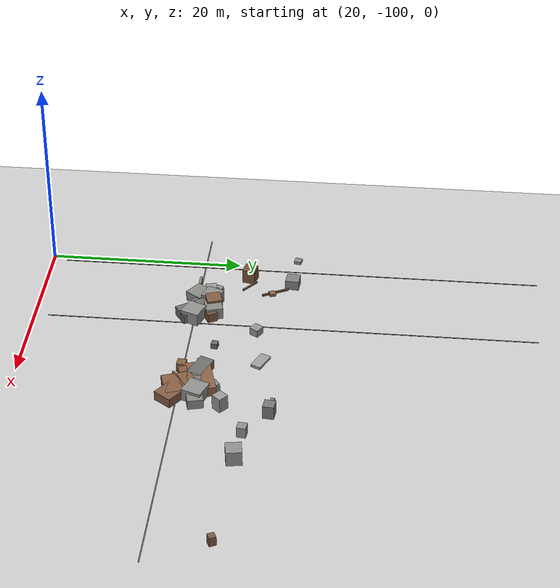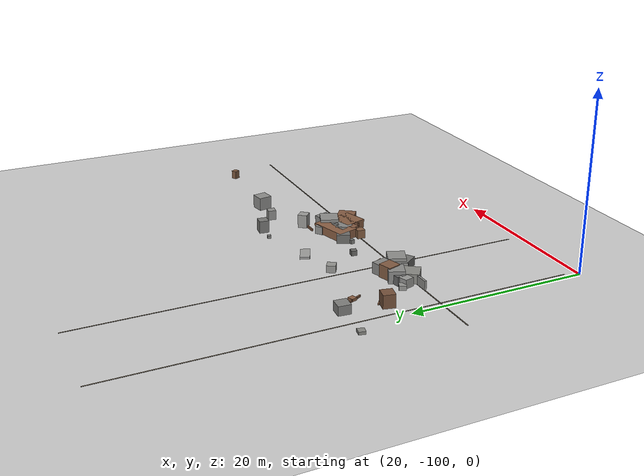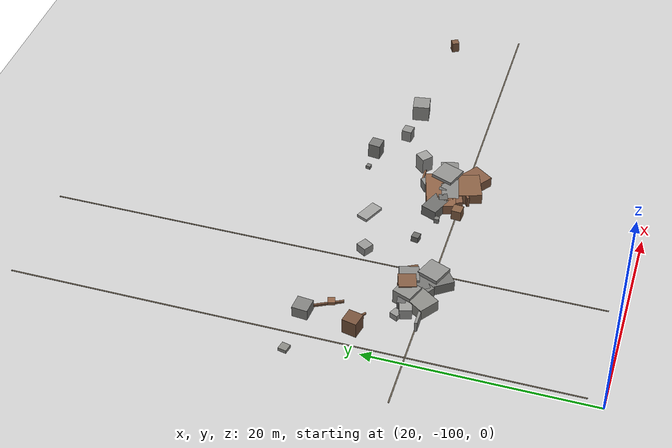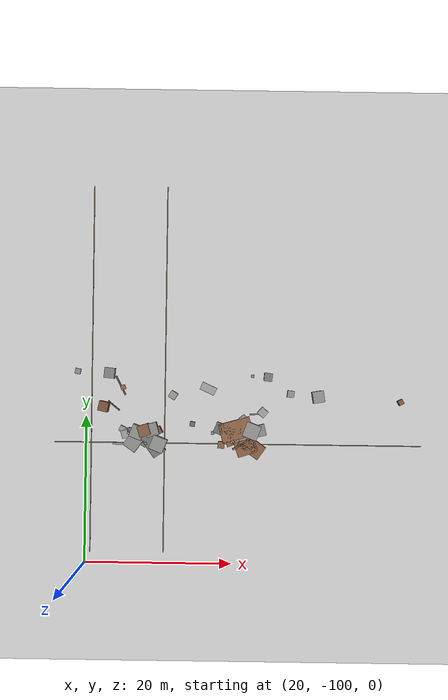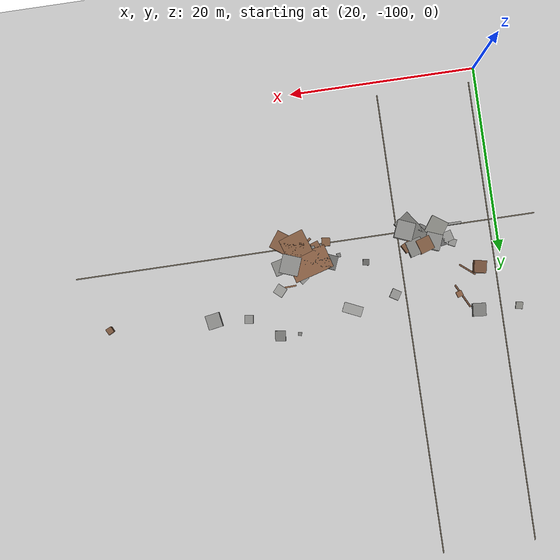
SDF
<sdf version="1.6">
 <world name="navitas_arena">
  <model name="ground_plane">
   <static>true</static>
   <link name="link">
    <collision name="collision">
     <geometry><plane><normal>0 0 1</normal><size>400 400</size></plane></geometry>
     <surface><friction><ode><mu>0.8</mu><mu2>0.8</mu2></ode></friction></surface>
    </collision>
    <visual name="visual">
     <cast_shadows>false</cast_shadows>
     <geometry><plane><normal>0 0 1</normal><size>400 400</size></plane></geometry>
     <material>
      <script><uri>file://media/materials/scripts/gazebo.material</uri><name>Gazebo/Grey</name></script>
     </material>
    </visual>
   </link>
  </model>
  <model name="gv_orta_-2">
   <static>true</static>
   <pose>20.700 -73.600 0.010 0 0 0.000</pose>
   <link name="link">
    <collision name="col"><geometry><box><size>0.120 50.000 0.020</size></box></geometry></collision>
    <visual name="vis">
     <geometry><box><size>0.120 50.000 0.020</size></box></geometry>
     <material><ambient>0.42 0.38 0.32 1</ambient><diffuse>0.42 0.38 0.32 1</diffuse></material>
    </visual>
   </link>
  </model>
  <model name="gv_orta_-1">
   <static>true</static>
   <pose>30.700 -73.600 0.010 0 0 0.000</pose>
   <link name="link">
    <collision name="col"><geometry><box><size>0.120 50.000 0.020</size></box></geometry></collision>
    <visual name="vis">
     <geometry><box><size>0.120 50.000 0.020</size></box></geometry>
     <material><ambient>0.42 0.38 0.32 1</ambient><diffuse>0.42 0.38 0.32 1</diffuse></material>
    </visual>
   </link>
  </model>
  <model name="gh_orta_-1">
   <static>true</static>
   <pose>40.700 -83.600 0.010 0 0 0.000</pose>
   <link name="link">
    <collision name="col"><geometry><box><size>50.000 0.120 0.020</size></box></geometry></collision>
    <visual name="vis">
     <geometry><box><size>50.000 0.120 0.020</size></box></geometry>
     <material><ambient>0.42 0.38 0.32 1</ambient><diffuse>0.42 0.38 0.32 1</diffuse></material>
    </visual>
   </link>
  </model>
  <model name="blk_orta_0_1_0">
   <static>true</static>
   <pose>25.696 -83.677 0.500 0 0 0.003</pose>
   <link name="link">
    <collision name="col"><geometry><box><size>3.831 0.238 1.000</size></box></geometry></collision>
    <visual name="vis">
     <geometry><box><size>3.831 0.238 1.000</size></box></geometry>
     <material><ambient>0.57 0.57 0.56 1</ambient><diffuse>0.57 0.57 0.56 1</diffuse></material>
    </visual>
   </link>
  </model>
  <model name="blk_orta_0_1_1">
   <static>true</static>
   <pose>26.474 -83.521 0.543 0 0 0.958</pose>
   <link name="link">
    <collision name="col"><geometry><box><size>1.940 1.940 1.086</size></box></geometry></collision>
    <visual name="vis">
     <geometry><box><size>1.940 1.940 1.086</size></box></geometry>
     <material><ambient>0.54 0.54 0.52 1</ambient><diffuse>0.54 0.54 0.52 1</diffuse></material>
    </visual>
   </link>
  </model>
  <model name="blk_orta_0_1_3">
   <static>true</static>
   <pose>28.053 -83.665 0.500 0 0 2.566</pose>
   <link name="link">
    <collision name="col"><geometry><box><size>0.732 0.732 1.000</size></box></geometry></collision>
    <visual name="vis">
     <geometry><box><size>0.732 0.732 1.000</size></box></geometry>
     <material><ambient>0.48 0.48 0.47 1</ambient><diffuse>0.48 0.48 0.47 1</diffuse></material>
    </visual>
   </link>
  </model>
  <model name="blk_orta_0_1_4">
   <static>true</static>
   <pose>28.989 -83.418 0.500 0 0 2.185</pose>
   <link name="link">
    <collision name="col"><geometry><box><size>4.056 1.913 1.000</size></box></geometry></collision>
    <visual name="vis">
     <geometry><box><size>4.056 1.913 1.000</size></box></geometry>
     <material><ambient>0.45 0.45 0.44 1</ambient><diffuse>0.45 0.45 0.44 1</diffuse></material>
    </visual>
   </link>
  </model>
  <model name="blk_orta_0_1_5">
   <static>true</static>
   <pose>29.901 -83.673 0.677 0 0 1.183</pose>
   <link name="link">
    <collision name="col"><geometry><box><size>1.955 1.955 1.353</size></box></geometry></collision>
    <visual name="vis">
     <geometry><box><size>1.955 1.955 1.353</size></box></geometry>
     <material><ambient>0.56 0.56 0.55 1</ambient><diffuse>0.56 0.56 0.55 1</diffuse></material>
    </visual>
   </link>
  </model>
  <model name="blk_orta_0_2_0">
   <static>true</static>
   <pose>25.452 -82.374 0.500 0 0 1.834</pose>
   <link name="link">
    <collision name="col"><geometry><box><size>1.091 1.091 1.000</size></box></geometry></collision>
    <visual name="vis">
     <geometry><box><size>1.091 1.091 1.000</size></box></geometry>
     <material><ambient>0.60 0.60 0.59 1</ambient><diffuse>0.60 0.60 0.59 1</diffuse></material>
    </visual>
   </link>
  </model>
  <model name="blk_orta_0_2_1">
   <static>true</static>
   <pose>26.246 -82.011 0.500 0 0 0.168</pose>
   <link name="link">
    <collision name="col"><geometry><box><size>1.094 1.094 1.000</size></box></geometry></collision>
    <visual name="vis">
     <geometry><box><size>1.094 1.094 1.000</size></box></geometry>
     <material><ambient>0.41 0.41 0.41 1</ambient><diffuse>0.41 0.41 0.41 1</diffuse></material>
    </visual>
   </link>
  </model>
  <model name="blk_orta_0_2_2">
   <static>true</static>
   <pose>27.059 -82.086 0.684 0 0 2.766</pose>
   <link name="link">
    <collision name="col"><geometry><box><size>1.740 1.740 1.368</size></box></geometry></collision>
    <visual name="vis">
     <geometry><box><size>1.740 1.740 1.368</size></box></geometry>
     <material><ambient>0.55 0.55 0.54 1</ambient><diffuse>0.55 0.55 0.54 1</diffuse></material>
    </visual>
   </link>
  </model>
  <model name="blk_orta_0_2_3">
   <static>true</static>
   <pose>27.976 -81.842 0.736 0 0 1.880</pose>
   <link name="link">
    <collision name="col"><geometry><box><size>1.544 1.544 1.473</size></box></geometry></collision>
    <visual name="vis">
     <geometry><box><size>1.544 1.544 1.473</size></box></geometry>
     <material><ambient>0.51 0.36 0.26 1</ambient><diffuse>0.51 0.36 0.26 1</diffuse></material>
    </visual>
   </link>
  </model>
  <model name="blk_orta_0_2_4">
   <static>true</static>
   <pose>29.010 -81.738 0.622 0 0 1.847</pose>
   <link name="link">
    <collision name="col"><geometry><box><size>1.722 1.722 1.243</size></box></geometry></collision>
    <visual name="vis">
     <geometry><box><size>1.722 1.722 1.243</size></box></geometry>
     <material><ambient>0.53 0.53 0.52 1</ambient><diffuse>0.53 0.53 0.52 1</diffuse></material>
    </visual>
   </link>
  </model>
  <model name="blk_orta_0_2_5">
   <static>true</static>
   <pose>29.838 -81.901 0.500 0 0 2.068</pose>
   <link name="link">
    <collision name="col"><geometry><box><size>1.027 1.027 1.000</size></box></geometry></collision>
    <visual name="vis">
     <geometry><box><size>1.027 1.027 1.000</size></box></geometry>
     <material><ambient>0.48 0.34 0.24 1</ambient><diffuse>0.48 0.34 0.24 1</diffuse></material>
    </visual>
   </link>
  </model>
  <model name="blk_orta_1_1_0">
   <static>true</static>
   <pose>38.447 -83.694 0.500 0 0 1.487</pose>
   <link name="link">
    <collision name="col"><geometry><box><size>0.896 0.896 1.000</size></box></geometry></collision>
    <visual name="vis">
     <geometry><box><size>0.896 0.896 1.000</size></box></geometry>
     <material><ambient>0.52 0.37 0.26 1</ambient><diffuse>0.52 0.37 0.26 1</diffuse></material>
    </visual>
   </link>
  </model>
  <model name="blk_orta_1_1_1">
   <static>true</static>
   <pose>39.610 -83.401 0.500 0 0 1.912</pose>
   <link name="link">
    <collision name="col"><geometry><box><size>0.895 0.895 1.000</size></box></geometry></collision>
    <visual name="vis">
     <geometry><box><size>0.895 0.895 1.000</size></box></geometry>
     <material><ambient>0.52 0.36 0.26 1</ambient><diffuse>0.52 0.36 0.26 1</diffuse></material>
    </visual>
   </link>
  </model>
  <model name="blk_orta_1_1_3">
   <static>true</static>
   <pose>41.248 -83.562 0.500 0 0 0.551</pose>
   <link name="link">
    <collision name="col"><geometry><box><size>2.809 0.232 1.000</size></box></geometry></collision>
    <visual name="vis">
     <geometry><box><size>2.809 0.232 1.000</size></box></geometry>
     <material><ambient>0.52 0.36 0.26 1</ambient><diffuse>0.52 0.36 0.26 1</diffuse></material>
    </visual>
   </link>
  </model>
  <model name="blk_orta_1_1_4">
   <static>true</static>
   <pose>41.734 -83.736 0.500 0 0 1.896</pose>
   <link name="link">
    <collision name="col"><geometry><box><size>2.564 2.799 1.000</size></box></geometry></collision>
    <visual name="vis">
     <geometry><box><size>2.564 2.799 1.000</size></box></geometry>
     <material><ambient>0.53 0.37 0.26 1</ambient><diffuse>0.53 0.37 0.26 1</diffuse></material>
    </visual>
   </link>
  </model>
  <model name="blk_orta_1_1_5">
   <static>true</static>
   <pose>42.551 -83.852 0.500 0 0 2.526</pose>
   <link name="link">
    <collision name="col"><geometry><box><size>3.453 2.018 1.000</size></box></geometry></collision>
    <visual name="vis">
     <geometry><box><size>3.453 2.018 1.000</size></box></geometry>
     <material><ambient>0.52 0.36 0.26 1</ambient><diffuse>0.52 0.36 0.26 1</diffuse></material>
    </visual>
   </link>
  </model>
  <model name="blk_orta_1_2_0">
   <static>true</static>
   <pose>38.901 -81.759 0.500 0 0 2.748</pose>
   <link name="link">
    <collision name="col"><geometry><box><size>2.770 1.504 1.000</size></box></geometry></collision>
    <visual name="vis">
     <geometry><box><size>2.770 1.504 1.000</size></box></geometry>
     <material><ambient>0.43 0.43 0.42 1</ambient><diffuse>0.43 0.43 0.42 1</diffuse></material>
    </visual>
   </link>
  </model>
  <model name="blk_orta_1_2_1">
   <static>true</static>
   <pose>39.601 -82.093 0.500 0 0 0.353</pose>
   <link name="link">
    <collision name="col"><geometry><box><size>0.780 0.780 1.000</size></box></geometry></collision>
    <visual name="vis">
     <geometry><box><size>0.780 0.780 1.000</size></box></geometry>
     <material><ambient>0.42 0.42 0.41 1</ambient><diffuse>0.42 0.42 0.41 1</diffuse></material>
    </visual>
   </link>
  </model>
  <model name="blk_orta_1_2_2">
   <static>true</static>
   <pose>40.460 -81.634 0.500 0 0 0.276</pose>
   <link name="link">
    <collision name="col"><geometry><box><size>4.359 2.599 1.000</size></box></geometry></collision>
    <visual name="vis">
     <geometry><box><size>4.359 2.599 1.000</size></box></geometry>
     <material><ambient>0.55 0.38 0.27 1</ambient><diffuse>0.55 0.38 0.27 1</diffuse></material>
    </visual>
   </link>
  </model>
  <model name="blk_orta_1_2_3">
   <static>true</static>
   <pose>40.846 -81.807 0.500 0 0 0.076</pose>
   <link name="link">
    <collision name="col"><geometry><box><size>0.710 0.710 1.000</size></box></geometry></collision>
    <visual name="vis">
     <geometry><box><size>0.710 0.710 1.000</size></box></geometry>
     <material><ambient>0.47 0.47 0.46 1</ambient><diffuse>0.47 0.47 0.46 1</diffuse></material>
    </visual>
   </link>
  </model>
  <model name="blk_orta_1_2_4">
   <static>true</static>
   <pose>42.008 -82.127 0.500 0 0 0.245</pose>
   <link name="link">
    <collision name="col"><geometry><box><size>4.970 1.563 1.000</size></box></geometry></collision>
    <visual name="vis">
     <geometry><box><size>4.970 1.563 1.000</size></box></geometry>
     <material><ambient>0.53 0.53 0.52 1</ambient><diffuse>0.53 0.53 0.52 1</diffuse></material>
    </visual>
   </link>
  </model>
  <model name="blk_orta_1_2_5">
   <static>true</static>
   <pose>42.593 -81.760 0.653 0 0 1.206</pose>
   <link name="link">
    <collision name="col"><geometry><box><size>2.054 2.054 1.306</size></box></geometry></collision>
    <visual name="vis">
     <geometry><box><size>2.054 2.054 1.306</size></box></geometry>
     <material><ambient>0.56 0.56 0.55 1</ambient><diffuse>0.56 0.56 0.55 1</diffuse></material>
    </visual>
   </link>
  </model>
  <model name="chic_orta_4">
   <static>true</static>
   <pose>62.783 -77.600 0.500 0 0 0.463</pose>
   <link name="link">
    <collision name="col"><geometry><box><size>0.674 0.674 1.000</size></box></geometry></collision>
    <visual name="vis">
     <geometry><box><size>0.674 0.674 1.000</size></box></geometry>
     <material><ambient>0.49 0.35 0.25 1</ambient><diffuse>0.49 0.35 0.25 1</diffuse></material>
    </visual>
   </link>
  </model>
  <model name="deb_orta_3">
   <static>true</static>
   <pose>43.272 -79.486 0.122 0 0 0.039</pose>
   <link name="link">
    <collision name="col"><geometry><box><size>2.018 0.156 0.245</size></box></geometry></collision>
    <visual name="vis">
     <geometry><box><size>2.018 0.156 0.245</size></box></geometry>
     <material><ambient>0.55 0.38 0.27 1</ambient><diffuse>0.55 0.38 0.27 1</diffuse></material>
    </visual>
   </link>
  </model>
  <model name="deb_orta_4">
   <static>true</static>
   <pose>34.491 -80.925 0.287 0 0 1.399</pose>
   <link name="link">
    <collision name="col"><geometry><box><size>0.658 0.658 0.574</size></box></geometry></collision>
    <visual name="vis">
     <geometry><box><size>0.658 0.658 0.574</size></box></geometry>
     <material><ambient>0.40 0.40 0.39 1</ambient><diffuse>0.40 0.40 0.39 1</diffuse></material>
    </visual>
   </link>
  </model>
  <model name="deb_orta_11">
   <static>true</static>
   <pose>41.447 -80.170 0.457 0 0 2.209</pose>
   <link name="link">
    <collision name="col"><geometry><box><size>0.933 0.933 0.914</size></box></geometry></collision>
    <visual name="vis">
     <geometry><box><size>0.933 0.933 0.914</size></box></geometry>
     <material><ambient>0.56 0.56 0.55 1</ambient><diffuse>0.56 0.56 0.55 1</diffuse></material>
    </visual>
   </link>
  </model>
  <model name="deb_orta_13">
   <static>true</static>
   <pose>28.721 -83.430 0.290 0 0 2.239</pose>
   <link name="link">
    <collision name="col"><geometry><box><size>0.716 0.716 0.580</size></box></geometry></collision>
    <visual name="vis">
     <geometry><box><size>0.716 0.716 0.580</size></box></geometry>
     <material><ambient>0.61 0.61 0.59 1</ambient><diffuse>0.61 0.61 0.59 1</diffuse></material>
    </visual>
   </link>
  </model>
  <model name="deb_orta_14">
   <static>true</static>
   <pose>22.478 -78.660 0.748 0 0 1.363</pose>
   <link name="link">
    <collision name="col"><geometry><box><size>1.322 1.322 1.495</size></box></geometry></collision>
    <visual name="vis">
     <geometry><box><size>1.322 1.322 1.495</size></box></geometry>
     <material><ambient>0.46 0.32 0.23 1</ambient><diffuse>0.46 0.32 0.23 1</diffuse></material>
    </visual>
   </link>
  </model>
  <model name="deb_orta_28">
   <static>true</static>
   <pose>42.637 -74.302 0.161 0 0 2.949</pose>
   <link name="link">
    <collision name="col"><geometry><box><size>0.409 0.409 0.322</size></box></geometry></collision>
    <visual name="vis">
     <geometry><box><size>0.409 0.409 0.322</size></box></geometry>
     <material><ambient>0.48 0.48 0.47 1</ambient><diffuse>0.48 0.48 0.47 1</diffuse></material>
    </visual>
   </link>
  </model>
  <model name="deb_orta_29">
   <static>true</static>
   <pose>24.956 -81.711 0.277 0 0 1.127</pose>
   <link name="link">
    <collision name="col"><geometry><box><size>0.765 0.765 0.554</size></box></geometry></collision>
    <visual name="vis">
     <geometry><box><size>0.765 0.765 0.554</size></box></geometry>
     <material><ambient>0.58 0.58 0.57 1</ambient><diffuse>0.58 0.58 0.57 1</diffuse></material>
    </visual>
   </link>
  </model>
  <model name="deb_orta_40">
   <static>true</static>
   <pose>31.846 -77.022 0.401 0 0 2.584</pose>
   <link name="link">
    <collision name="col"><geometry><box><size>0.998 0.998 0.802</size></box></geometry></collision>
    <visual name="vis">
     <geometry><box><size>0.998 0.998 0.802</size></box></geometry>
     <material><ambient>0.58 0.58 0.57 1</ambient><diffuse>0.58 0.58 0.57 1</diffuse></material>
    </visual>
   </link>
  </model>
  <model name="deb_orta_41">
   <static>true</static>
   <pose>18.784 -73.936 0.161 0 0 2.935</pose>
   <link name="link">
    <collision name="col"><geometry><box><size>0.755 0.755 0.323</size></box></geometry></collision>
    <visual name="vis">
     <geometry><box><size>0.755 0.755 0.323</size></box></geometry>
     <material><ambient>0.53 0.53 0.51 1</ambient><diffuse>0.53 0.53 0.51 1</diffuse></material>
    </visual>
   </link>
  </model>
  <model name="deb_orta_44">
   <static>true</static>
   <pose>44.726 -74.405 0.719 0 0 3.027</pose>
   <link name="link">
    <collision name="col"><geometry><box><size>1.110 1.110 1.438</size></box></geometry></collision>
    <visual name="vis">
     <geometry><box><size>1.110 1.110 1.438</size></box></geometry>
     <material><ambient>0.47 0.47 0.46 1</ambient><diffuse>0.47 0.47 0.46 1</diffuse></material>
    </visual>
   </link>
  </model>
  <model name="deb_orta_46">
   <static>true</static>
   <pose>36.614 -76.087 0.139 0 0 2.712</pose>
   <link name="link">
    <collision name="col"><geometry><box><size>2.115 1.083 0.277</size></box></geometry></collision>
    <visual name="vis">
     <geometry><box><size>2.115 1.083 0.277</size></box></geometry>
     <material><ambient>0.62 0.62 0.61 1</ambient><diffuse>0.62 0.62 0.61 1</diffuse></material>
    </visual>
   </link>
  </model>
  <model name="deb_orta_51">
   <static>true</static>
   <pose>24.981 -76.078 0.151 0 0 1.901</pose>
   <link name="link">
    <collision name="col"><geometry><box><size>0.644 0.644 0.302</size></box></geometry></collision>
    <visual name="vis">
     <geometry><box><size>0.644 0.644 0.302</size></box></geometry>
     <material><ambient>0.55 0.38 0.27 1</ambient><diffuse>0.55 0.38 0.27 1</diffuse></material>
    </visual>
   </link>
  </model>
  <model name="deb_orta_52">
   <static>true</static>
   <pose>47.823 -76.659 0.570 0 0 1.453</pose>
   <link name="link">
    <collision name="col"><geometry><box><size>0.909 0.909 1.140</size></box></geometry></collision>
    <visual name="vis">
     <geometry><box><size>0.909 0.909 1.140</size></box></geometry>
     <material><ambient>0.56 0.56 0.55 1</ambient><diffuse>0.56 0.56 0.55 1</diffuse></material>
    </visual>
   </link>
  </model>
  <model name="deb_orta_55">
   <static>true</static>
   <pose>23.737 -78.569 0.084 0 0 2.456</pose>
   <link name="link">
    <collision name="col"><geometry><box><size>2.043 0.165 0.167</size></box></geometry></collision>
    <visual name="vis">
     <geometry><box><size>2.043 0.165 0.167</size></box></geometry>
     <material><ambient>0.49 0.34 0.24 1</ambient><diffuse>0.49 0.34 0.24 1</diffuse></material>
    </visual>
   </link>
  </model>
  <model name="deb_orta_62">
   <static>true</static>
   <pose>24.650 -75.804 0.107 0 0 2.048</pose>
   <link name="link">
    <collision name="col"><geometry><box><size>2.900 0.177 0.214</size></box></geometry></collision>
    <visual name="vis">
     <geometry><box><size>2.900 0.177 0.214</size></box></geometry>
     <material><ambient>0.46 0.32 0.23 1</ambient><diffuse>0.46 0.32 0.23 1</diffuse></material>
    </visual>
   </link>
  </model>
  <model name="deb_orta_68">
   <static>true</static>
   <pose>37.287 -82.096 0.233 0 0 0.065</pose>
   <link name="link">
    <collision name="col"><geometry><box><size>0.427 0.427 0.467</size></box></geometry></collision>
    <visual name="vis">
     <geometry><box><size>0.427 0.427 0.467</size></box></geometry>
     <material><ambient>0.48 0.48 0.47 1</ambient><diffuse>0.48 0.48 0.47 1</diffuse></material>
    </visual>
   </link>
  </model>
  <model name="deb_orta_74">
   <static>true</static>
   <pose>23.180 -74.106 0.521 0 0 1.483</pose>
   <link name="link">
    <collision name="col"><geometry><box><size>1.401 1.401 1.043</size></box></geometry></collision>
    <visual name="vis">
     <geometry><box><size>1.401 1.401 1.043</size></box></geometry>
     <material><ambient>0.50 0.50 0.49 1</ambient><diffuse>0.50 0.50 0.49 1</diffuse></material>
    </visual>
   </link>
  </model>
  <model name="deb_orta_78">
   <static>true</static>
   <pose>51.548 -77.000 0.774 0 0 1.734</pose>
   <link name="link">
    <collision name="col"><geometry><box><size>1.547 1.547 1.548</size></box></geometry></collision>
    <visual name="vis">
     <geometry><box><size>1.547 1.547 1.548</size></box></geometry>
     <material><ambient>0.56 0.56 0.55 1</ambient><diffuse>0.56 0.56 0.55 1</diffuse></material>
    </visual>
   </link>
  </model>
  <model name="deb_orta_81">
   <static>true</static>
   <pose>44.057 -79.205 0.779 0 0 2.420</pose>
   <link name="link">
    <collision name="col"><geometry><box><size>1.087 1.087 1.559</size></box></geometry></collision>
    <visual name="vis">
     <geometry><box><size>1.087 1.087 1.559</size></box></geometry>
     <material><ambient>0.61 0.61 0.60 1</ambient><diffuse>0.61 0.61 0.60 1</diffuse></material>
    </visual>
   </link>
  </model>
 </world>
</sdf>
